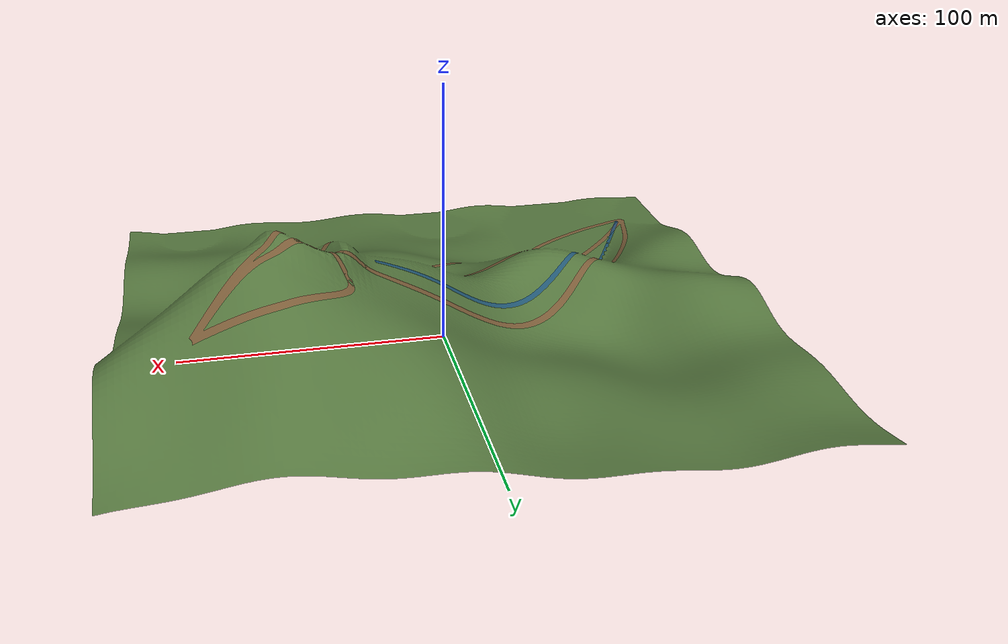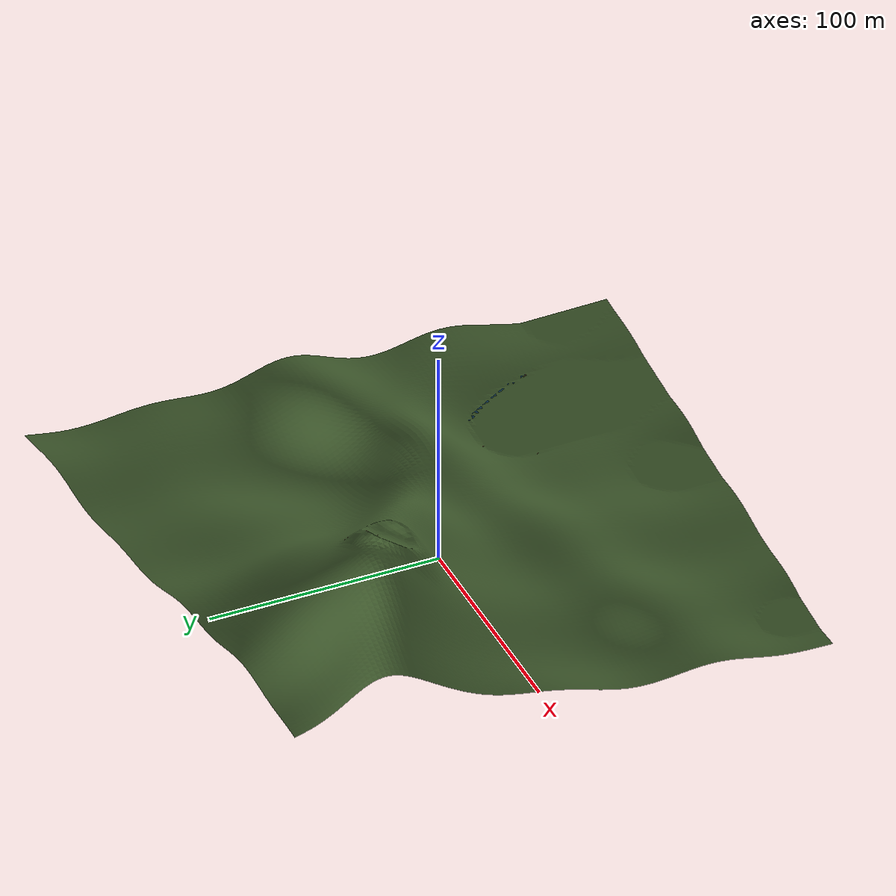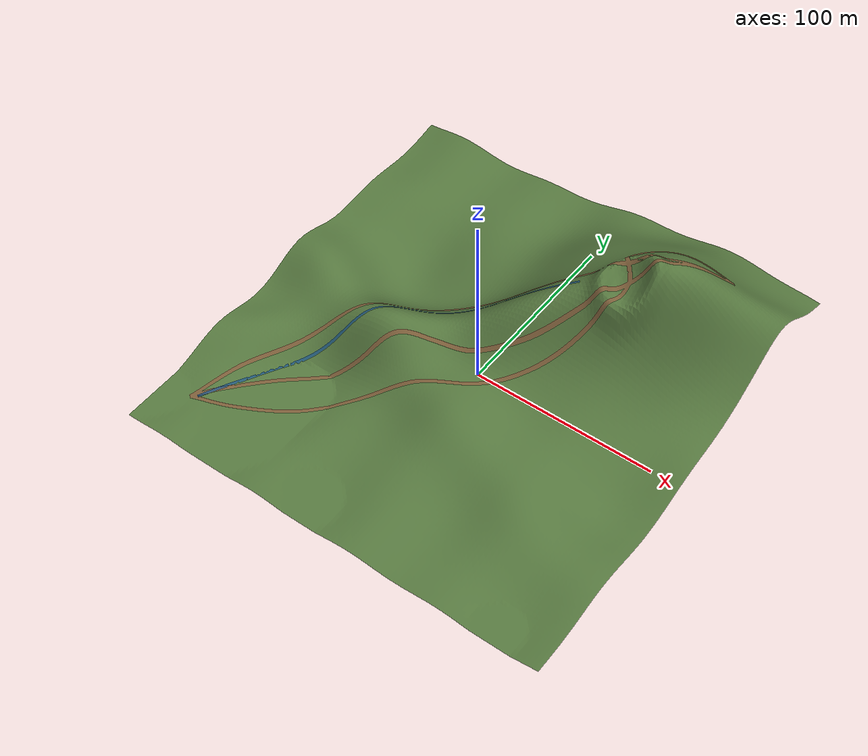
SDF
<?xml version="1.0"?>
<sdf version="1.10">
  <model name="hiking_lora_terrain">
    <static>true</static>
    <link name="terrain_link">
      <collision name="terrain_collision">
        <geometry>
          <mesh>
            <uri>model://hiking_lora_terrain/meshes/mountain_terrain.dae</uri>
          </mesh>
        </geometry>
      </collision>
      <visual name="terrain_visual">
        <geometry>
          <mesh>
            <uri>model://hiking_lora_terrain/meshes/mountain_terrain.dae</uri>
          </mesh>
        </geometry>
        <material>
          <ambient>0.22 0.32 0.17 1</ambient>
          <diffuse>0.33 0.46 0.24 1</diffuse>
          <specular>0.06 0.07 0.05 1</specular>
        </material>
      </visual>
      <visual name="trail_surface_visual">
        <geometry>
          <mesh>
            <uri>model://hiking_lora_terrain/meshes/trail_surface.dae</uri>
          </mesh>
        </geometry>
        <material>
          <ambient>0.31 0.22 0.13 1</ambient>
          <diffuse>0.48 0.36 0.22 1</diffuse>
          <specular>0.04 0.03 0.02 1</specular>
        </material>
      </visual>
      <visual name="stream_surface_visual">
        <geometry>
          <mesh>
            <uri>model://hiking_lora_terrain/meshes/stream_surface.dae</uri>
          </mesh>
        </geometry>
        <material>
          <ambient>0.05 0.18 0.32 0.72</ambient>
          <diffuse>0.10 0.34 0.58 0.72</diffuse>
          <specular>0.02 0.04 0.06 1</specular>
        </material>
      </visual>
    </link>
  </model>
</sdf>
